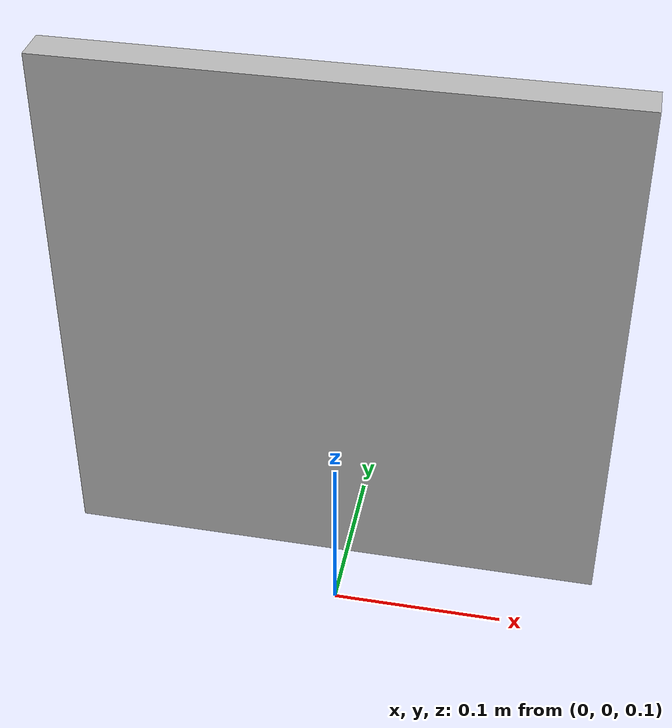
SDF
<?xml version="1.0"?>
<sdf version="1.6">
  <model name="apriltag_0">
    <static>true</static>
    <link name="link">
      <pose>0 0 0.3 0 0 0</pose>
      <collision name="collision">
        <geometry><box><size>0.3 0.02 0.3</size></box></geometry>
      </collision>
      <visual name="visual">
        <geometry><box><size>0.3 0.02 0.3</size></box></geometry>
        <material>
          <script>
            <uri>model://apriltag_0/materials/scripts</uri>
            <uri>model://apriltag_0/materials/textures</uri>
            <name>AprilTag/tag0</name>
          </script>
        </material>
      </visual>
    </link>
  </model>
</sdf>
